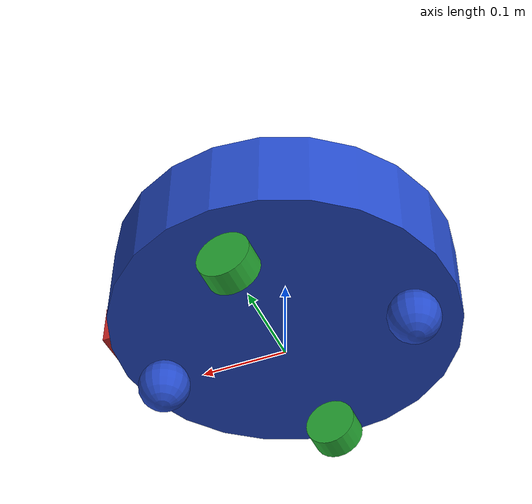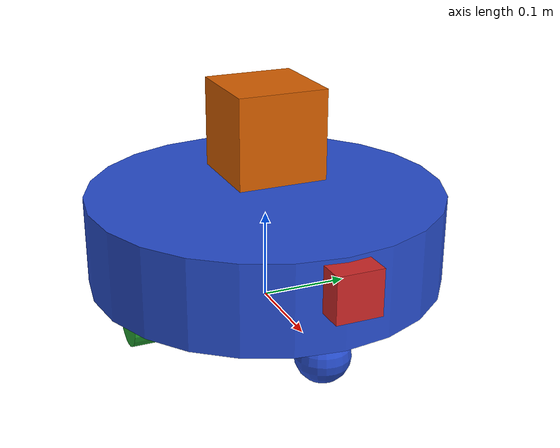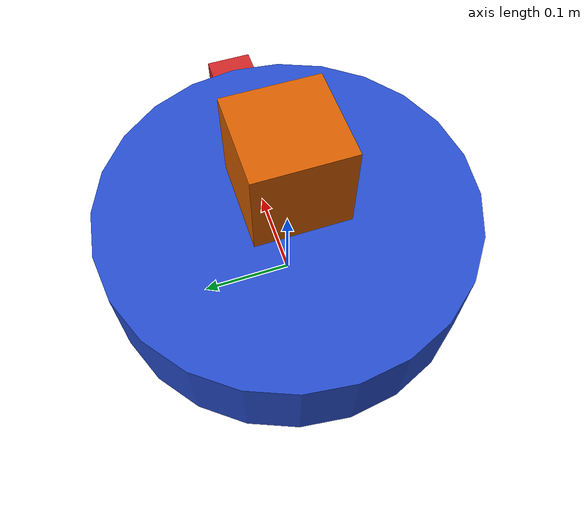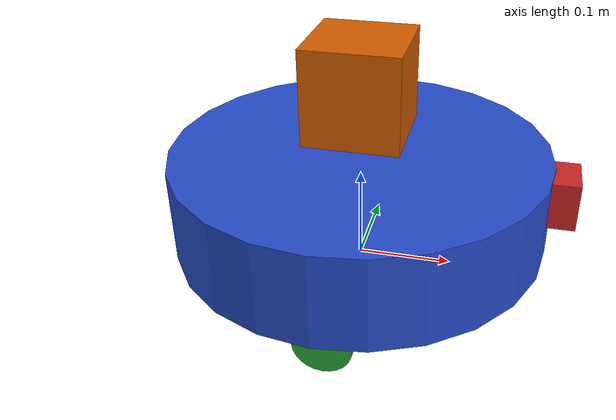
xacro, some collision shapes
<?xml version='1.0'?>

<robot name="robot_circular" xmlns:xacro="http://www.ros.org/wiki/xacro">

  <xacro:include filename="$(find udacity_bot)/urdf/robot_circular.gazebo" />

  <link name="robot_footprint"></link>

  <joint name="robot_footprint_joint" type="fixed">
    <origin xyz="0 0 0" rpy="0 0 0" />
    <parent link="robot_footprint"/>
    <child link="chassis" />
  </joint>

  <link name='chassis'>
    <pose>0 0 0.1 0 0 0</pose>

    <inertial>
      <mass value="1.5"/>
      <origin xyz="0.0 0 0.08" rpy=" 0 0 0"/>
      <inertia
          ixx="0.1" ixy="0" ixz="0"
          iyy="0.1" iyz="0"
          izz="0.1"
      />
    </inertial>

    <collision name='collision'>
      <origin xyz="0 0 0.08" rpy=" 0 0 0"/>
      <geometry>
        <cylinder length="0.1" radius="0.2"/>
      </geometry>
    </collision>

    <visual name='chassis_visual'>
      <origin xyz="0 0 0.08" rpy=" 0 0 0"/>
      <geometry>
        <cylinder length="0.1" radius="0.2"/>
      </geometry>
    </visual>

    <collision name='back_caster_collision'>
      <origin xyz="-0.15 0 0.0" rpy=" 0 0 0"/>
      <geometry>
        <sphere radius="0.03"/>
      </geometry>
    </collision>

    <visual name='back_caster_visual'>
      <origin xyz="-0.15 0 0.0" rpy=" 0 0 0"/>
      <geometry>
        <sphere radius="0.03"/>
      </geometry>
    </visual>

    <collision name='front_caster_collision'>
      <origin xyz="0.15 0 0.0" rpy=" 0 0 0"/>
      <geometry>
        <sphere radius="0.03"/>
      </geometry>
    </collision>

    <visual name='front_caster_visual'>
      <origin xyz="0.15 0 0.0" rpy=" 0 0 0"/>
      <geometry>
        <sphere radius="0.03"/>
      </geometry>
    </visual>

  </link>

  <link name='left_wheel'>

    <inertial>
      <mass value="0.4"/>
      <origin xyz="0.0 0 0" rpy=" 0 1.5707 1.5707"/>
      <inertia
          ixx="0.1" ixy="0" ixz="0"
          iyy="0.1" iyz="0"
          izz="0.1"
      />
    </inertial>

    <collision name='collision'>
      <origin xyz="0 0 0" rpy=" 0 1.5707 1.5707"/>
      <geometry>
        <cylinder radius="0.03" length="0.03"/>
      </geometry>
    </collision>

    <visual name='left_wheel_visual'>
      <origin xyz="0 0 0" rpy=" 0 1.5707 1.5707"/>
      <geometry>
        <cylinder radius="0.03" length="0.03"/>
      </geometry>
    </visual>

  </link>

  <link name='right_wheel'>

    <inertial>
      <mass value="0.4"/>
      <origin xyz="0.0 0 0" rpy=" 0 1.5707 1.5707"/>
      <inertia
          ixx="0.1" ixy="0" ixz="0"
          iyy="0.1" iyz="0"
          izz="0.1"
      />
    </inertial>

    <collision name='collision'>
      <origin xyz="0 0 0" rpy=" 0 1.5707 1.5707"/>
      <geometry>
        <cylinder radius="0.03" length="0.03"/>
      </geometry>
    </collision>

    <visual name='right_wheel_visual'>
      <origin xyz="0 0 0" rpy=" 0 1.5707 1.5707"/>
      <geometry>
        <cylinder radius="0.03" length="0.03"/>
      </geometry>
    </visual>

  </link>

  <joint type="continuous" name="left_wheel_hinge">
    <origin xyz="0 0.15 0" rpy="0 0 0"/>
    <child link="left_wheel"/>
    <parent link="chassis"/>
    <axis xyz="0 1 0" rpy="0 0 0"/>
    <limit effort="10000" velocity="1000"/>
    <dynamics damping="1.0" friction="1.0"/>
  </joint>

  <joint type="continuous" name="right_wheel_hinge">
    <origin xyz="0 -0.15 0" rpy="0 0 0"/>
    <child link="right_wheel"/>
    <parent link="chassis"/>
    <axis xyz="0 1 0" rpy="0 0 0"/>
    <limit effort="10000" velocity="1000"/>
    <dynamics damping="1.0" friction="1.0"/>
  </joint>

  <link name='camera'>

    <inertial>
      <mass value="0.1"/>
      <origin xyz="0 0 0" rpy="0 0 0"/>
      <inertia
          ixx="1e-6" ixy="0" ixz="0"
          iyy="1e-6" iyz="0"
          izz="1e-6"
      />
    </inertial>

    <collision name='collision'>
      <origin xyz="0 0 0" rpy="0 0 0"/>
      <geometry>
        <box size="0.05 0.05 0.05"/>
      </geometry>
    </collision>

    <visual name='camera_visual'>
      <origin xyz="0 0 0" rpy="0 0 0"/>
      <geometry>
        <box size="0.05 0.05 0.05"/>
      </geometry>
    </visual>

  </link>

  <joint type="fixed" name="camera_joint">
    <origin xyz="0.2 0 0.1" rpy="0 0 0"/>
    <child link="camera"/>
    <parent link="chassis"/>
  </joint>

  <link name='hokuyo'>

    <inertial>
      <mass value="0.1"/>
      <origin xyz="0 0 0" rpy="0 0 0"/>
      <inertia
          ixx="1e-6" ixy="0" ixz="0"
          iyy="1e-6" iyz="0"
          izz="1e-6"
      />
    </inertial>

    <collision name='collision'>
      <origin xyz="0 0 0" rpy="0 0 0"/>
      <geometry>
        <box size="0.1 0.1 0.1"/>
      </geometry>
    </collision>

    <visual name='hokuyo_visual'>
      <origin xyz="0 0 0" rpy="0 0 0"/>
      <geometry>
        <mesh filename="package://udacity_bot/meshes/hokuyo.dae"/>
      </geometry>
    </visual>

  </link>

  <joint type="fixed" name="hokuyo_joint">
    <origin xyz="0.0 0 0.2" rpy="0 0 0"/>
    <child link="hokuyo"/>
    <parent link="chassis"/>
  </joint>

</robot>
